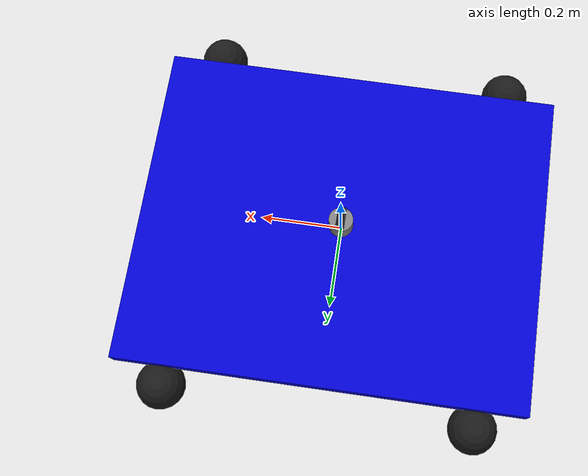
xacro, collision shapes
<?xml version="1.0"?>
<robot xmlns:xacro="http://www.ros.org/wiki/xacro" xmlns:gz="http://gazebosim.org/schema" name="omnibase">

  <!-- Materials -->
  <material name="darkgrey">
    <color rgba="0.1 0.1 0.1 1.0" />
  </material>
  <material name="grey">
    <color rgba="0.5 0.5 0.5 1.0" />
  </material>
  <material name="blue">
    <color rgba="0.0 0.0 0.8 1.0" />
  </material>
  <material name="black">
    <color rgba="0.1 0.1 0.1 1.0"/>
  </material>

  <!-- Constants from base_ws mecanumbot -->
  <xacro:property name="M_PI" value="3.1415926535897931" />
  <xacro:property name="M_PI_2" value="1.570796327" />

  <!-- Base dimensions - larger platform for drone landing -->
  <xacro:property name="base_size_x" value="1.0" />
  <xacro:property name="base_size_y" value="0.8" />
  <xacro:property name="base_size_z" value="0.05" />
  <xacro:property name="base_mass" value="10.0" />

  <!-- Wheel parameters - scaled from base_ws (0.03 -> 0.06 for larger base) -->
  <xacro:property name="wheel_radius" value="0.06" />
  <xacro:property name="wheel_width" value="0.05" />
  <xacro:property name="wheel_offset_x" value="0.38"/>
  <xacro:property name="wheel_offset_y" value="0.44"/>
  <xacro:property name="wheel_offset_z" value="-0.05"/>
  <xacro:property name="wheel_mass" value="0.500"/>
  <xacro:property name="mesh_scale" value="1.2"/>

  <!-- Inertia macros from base_ws -->
  <xacro:macro name="box_inertia" params="m x y z">
    <inertia ixx="${m*(y*y+z*z)/12}" ixy="0" ixz="0"
             iyy="${m*(x*x+z*z)/12}" iyz="0"
             izz="${m*(x*x+z*z)/12}"
    />
  </xacro:macro>
  <xacro:macro name="cylinder_inertia" params="m r w">
    <inertia ixx="${m*(3*r*r+w*w)/12}" ixy="0" ixz="0"
             iyy="${m*(3*r*r+w*w)/12}" iyz="0"
             izz="${m*r*r/2}"
    />
  </xacro:macro>

  <!-- Base Footprint -->
  <link name="base_footprint" />

  <joint name="base_joint" type="fixed">
    <parent link="base_footprint" />
    <child link="base_link" />
    <origin xyz="0 0 0" rpy="0 0 0" />
  </joint>

  <!-- Base Link -->
  <link name="base_link">
    <visual>
      <origin xyz="0 0 0" rpy="0 0 0" />
      <geometry>
        <box size="${base_size_x} ${base_size_y} ${base_size_z}" />
      </geometry>
      <material name="blue" />
    </visual>
    <collision>
      <origin xyz="0 0 0" rpy="0 0 0" />
      <geometry>
        <box size="${base_size_x} ${base_size_y} ${base_size_z}" />
      </geometry>
    </collision>
    <inertial>
      <origin xyz="0.0 0.0 0.0" rpy="0.0 0.0 0.0"/>
      <mass value="${base_mass}"/>
      <xacro:box_inertia m="${base_mass}" x="${base_size_x}" y="${base_size_y}" z="${base_size_z}"/>
    </inertial>
  </link>

  <!-- Front Left Wheel -->
  <joint name="fl_wheel_joint" type="continuous">
    <parent link="base_link"/>
    <child link="fl_wheel_link"/>
    <origin xyz="${-wheel_offset_x} ${-wheel_offset_y} ${wheel_offset_z}" rpy="0 0 ${-M_PI/2}" />
    <axis xyz="1 0 0" rpy="0 0 0"/>
  </joint>
  <link name="fl_wheel_link">
    <visual>
      <origin xyz="0 0 0" rpy="0 0 0" />
      <geometry>
        <mesh filename="package://omnibase_description/meshes/fl_wheel_link.STL" scale="${mesh_scale} ${mesh_scale} ${mesh_scale}" />
      </geometry>
      <material name="darkgrey" />
    </visual>
    <collision>
      <origin xyz="0 0 0" rpy="0 0 0" />
      <geometry>
        <sphere radius="${wheel_radius}" />
      </geometry>
    </collision>
    <inertial>
      <origin xyz="0 0 0" rpy="0 0 0" />
      <mass value="${wheel_mass}" />
      <xacro:cylinder_inertia m="${wheel_mass}" r="${wheel_radius}" w="${wheel_width}" />
    </inertial>
  </link>

  <!-- Front Right Wheel -->
  <joint name="fr_wheel_joint" type="continuous">
    <parent link="base_link"/>
    <child link="fr_wheel_link"/>
    <origin xyz="${-wheel_offset_x} ${wheel_offset_y} ${wheel_offset_z}" rpy="0 0 ${M_PI/2}" />
    <axis xyz="-1 0 0" rpy="0 0 0"/>
  </joint>
  <link name="fr_wheel_link">
    <visual>
      <origin xyz="0 0 0" rpy="0 0 0" />
      <geometry>
        <mesh filename="package://omnibase_description/meshes/fr_wheel_link.STL" scale="${mesh_scale} ${mesh_scale} ${mesh_scale}" />
      </geometry>
      <material name="darkgrey" />
    </visual>
    <collision>
      <origin xyz="0 0 0" rpy="0 0 0" />
      <geometry>
        <sphere radius="${wheel_radius}" />
      </geometry>
    </collision>
    <inertial>
      <origin xyz="0 0 0" rpy="0 0 0" />
      <mass value="${wheel_mass}" />
      <xacro:cylinder_inertia m="${wheel_mass}" r="${wheel_radius}" w="${wheel_width}" />
    </inertial>
  </link>

  <!-- Rear Left Wheel -->
  <joint name="rl_wheel_joint" type="continuous">
    <parent link="base_link"/>
    <child link="rl_wheel_link"/>
    <origin xyz="${wheel_offset_x} ${-wheel_offset_y} ${wheel_offset_z}" rpy="0 0 ${-M_PI/2}" />
    <axis xyz="1 0 0" rpy="0 0 0"/>
  </joint>
  <link name="rl_wheel_link">
    <visual>
      <origin xyz="0 0 0" rpy="0 0 0" />
      <geometry>
        <mesh filename="package://omnibase_description/meshes/rl_wheel_link.STL" scale="${mesh_scale} ${mesh_scale} ${mesh_scale}" />
      </geometry>
      <material name="darkgrey" />
    </visual>
    <collision>
      <origin xyz="0 0 0" rpy="0 0 0" />
      <geometry>
        <sphere radius="${wheel_radius}" />
      </geometry>
    </collision>
    <inertial>
      <origin xyz="0 0 0" rpy="0 0 0" />
      <mass value="${wheel_mass}" />
      <xacro:cylinder_inertia m="${wheel_mass}" r="${wheel_radius}" w="${wheel_width}" />
    </inertial>
  </link>

  <!-- Rear Right Wheel -->
  <joint name="rr_wheel_joint" type="continuous">
    <parent link="base_link"/>
    <child link="rr_wheel_link"/>
    <origin xyz="${wheel_offset_x} ${wheel_offset_y} ${wheel_offset_z}" rpy="0 0 ${M_PI/2}" />
    <axis xyz="-1 0 0" rpy="0 0 0"/>
  </joint>
  <link name="rr_wheel_link">
    <visual>
      <origin xyz="0 0 0" rpy="0 0 0" />
      <geometry>
        <mesh filename="package://omnibase_description/meshes/rr_wheel_link.STL" scale="${mesh_scale} ${mesh_scale} ${mesh_scale}" />
      </geometry>
      <material name="darkgrey" />
    </visual>
    <collision>
      <origin xyz="0 0 0" rpy="0 0 0" />
      <geometry>
        <sphere radius="${wheel_radius}" />
      </geometry>
    </collision>
    <inertial>
      <origin xyz="0 0 0" rpy="0 0 0" />
      <mass value="${wheel_mass}" />
      <xacro:cylinder_inertia m="${wheel_mass}" r="${wheel_radius}" w="${wheel_width}" />
    </inertial>
  </link>

  <!-- Camera Mount (retained from original omnibase) -->
  <link name="camera_mount">
    <visual>
      <geometry>
        <cylinder radius="0.03" length="0.05"/>
      </geometry>
      <material name="grey"/>
    </visual>
    <collision>
      <geometry>
        <cylinder radius="0.03" length="0.05"/>
      </geometry>
    </collision>
    <inertial>
      <mass value="0.1"/>
      <inertia ixx="0.0001" ixy="0.0" ixz="0.0"
               iyy="0.0001" iyz="0.0"
               izz="0.0001"/>
    </inertial>
  </link>

  <joint name="camera_mount_joint" type="fixed">
    <parent link="base_link"/>
    <child link="camera_mount"/>
    <origin xyz="0 0 ${base_size_z/2 + 0.025}" rpy="0 0 0"/>
  </joint>

  <!-- Camera Link -->
  <link name="camera_link">
    <visual>
      <geometry>
        <box size="0.02 0.05 0.02"/>
      </geometry>
      <material name="black"/>
    </visual>
    <collision>
      <geometry>
        <box size="0.02 0.05 0.02"/>
      </geometry>
    </collision>
    <inertial>
      <mass value="0.05"/>
      <inertia ixx="0.00001" ixy="0.0" ixz="0.0"
               iyy="0.00001" iyz="0.0"
               izz="0.00001"/>
    </inertial>
  </link>

  <joint name="camera_joint" type="fixed">
    <parent link="camera_mount"/>
    <child link="camera_link"/>
    <origin xyz="0 0 0.035" rpy="0 0 0"/>
  </joint>

  <!-- Camera Optical Frame (pointing up) -->
  <link name="camera_optical_link"/>

  <joint name="camera_optical_joint" type="fixed">
    <parent link="camera_link"/>
    <child link="camera_optical_link"/>
    <!-- Rotate to point upward: -90 deg around X, then -90 deg around Z -->
    <origin xyz="0 0 0" rpy="${-M_PI/2} 0 ${-M_PI/2}"/>
  </joint>

  <!-- Gazebo Harmonic Material Colors -->
  <gazebo reference="base_link">
    <visual>
      <material>
        <ambient>0.0 0.0 0.8 1</ambient>
        <diffuse>0.0 0.0 0.8 1</diffuse>
        <specular>0.1 0.1 0.1 1</specular>
      </material>
    </visual>
  </gazebo>
  <!-- FL wheel: rollers at +45 degrees, fdir1 oriented accordingly -->
  <gazebo reference="fl_wheel_link">
    <visual>
      <material>
        <ambient>0.1 0.1 0.1 1</ambient>
        <diffuse>0.1 0.1 0.1 1</diffuse>
        <specular>0.1 0.1 0.1 1</specular>
      </material>
    </visual>
    <collision>
      <surface>
        <friction>
          <ode>
            <mu>1.0</mu>
            <mu2>0.0</mu2>
            <fdir1 gz:expressed_in="base_link">0.707 0.707 0</fdir1>
            <slip1>0.0</slip1>
            <slip2>0.0</slip2>
          </ode>
        </friction>
        <contact>
          <ode>
            <kp>1000000.0</kp>
            <kd>100.0</kd>
            <min_depth>0.001</min_depth>
          </ode>
        </contact>
      </surface>
    </collision>
  </gazebo>
  <!-- FR wheel: rollers at -45 degrees -->
  <gazebo reference="fr_wheel_link">
    <visual>
      <material>
        <ambient>0.1 0.1 0.1 1</ambient>
        <diffuse>0.1 0.1 0.1 1</diffuse>
        <specular>0.1 0.1 0.1 1</specular>
      </material>
    </visual>
    <collision>
      <surface>
        <friction>
          <ode>
            <mu>1.0</mu>
            <mu2>0.0</mu2>
            <fdir1 gz:expressed_in="base_link">0.707 -0.707 0</fdir1>
            <slip1>0.0</slip1>
            <slip2>0.0</slip2>
          </ode>
        </friction>
        <contact>
          <ode>
            <kp>1000000.0</kp>
            <kd>100.0</kd>
            <min_depth>0.001</min_depth>
          </ode>
        </contact>
      </surface>
    </collision>
  </gazebo>
  <!-- RL wheel: rollers at -45 degrees -->
  <gazebo reference="rl_wheel_link">
    <visual>
      <material>
        <ambient>0.1 0.1 0.1 1</ambient>
        <diffuse>0.1 0.1 0.1 1</diffuse>
        <specular>0.1 0.1 0.1 1</specular>
      </material>
    </visual>
    <collision>
      <surface>
        <friction>
          <ode>
            <mu>1.0</mu>
            <mu2>0.0</mu2>
            <fdir1 gz:expressed_in="base_link">0.707 -0.707 0</fdir1>
            <slip1>0.0</slip1>
            <slip2>0.0</slip2>
          </ode>
        </friction>
        <contact>
          <ode>
            <kp>1000000.0</kp>
            <kd>100.0</kd>
            <min_depth>0.001</min_depth>
          </ode>
        </contact>
      </surface>
    </collision>
  </gazebo>
  <!-- RR wheel: rollers at +45 degrees -->
  <gazebo reference="rr_wheel_link">
    <visual>
      <material>
        <ambient>0.1 0.1 0.1 1</ambient>
        <diffuse>0.1 0.1 0.1 1</diffuse>
        <specular>0.1 0.1 0.1 1</specular>
      </material>
    </visual>
    <collision>
      <surface>
        <friction>
          <ode>
            <mu>1.0</mu>
            <mu2>0.0</mu2>
            <fdir1 gz:expressed_in="base_link">0.707 0.707 0</fdir1>
            <slip1>0.0</slip1>
            <slip2>0.0</slip2>
          </ode>
        </friction>
        <contact>
          <ode>
            <kp>1000000.0</kp>
            <kd>100.0</kd>
            <min_depth>0.001</min_depth>
          </ode>
        </contact>
      </surface>
    </collision>
  </gazebo>

  <!-- Upward Camera Sensor for Gazebo -->
  <gazebo reference="camera_link">
    <sensor name="upward_camera" type="camera">
      <!-- Rotate camera to point upward: pitch -90 degrees (around Y axis) -->
      <pose>0 0 0 0 -1.5708 0</pose>
      <update_rate>30.0</update_rate>
      <camera name="upward_camera">
        <horizontal_fov>1.3962634</horizontal_fov>
        <image>
          <width>640</width>
          <height>480</height>
          <format>R8G8B8</format>
        </image>
        <clip>
          <near>0.1</near>
          <far>100</far>
        </clip>
        <noise>
          <type>gaussian</type>
          <mean>0.0</mean>
          <stddev>0.007</stddev>
        </noise>
      </camera>
      <always_on>1</always_on>
      <visualize>true</visualize>
      <topic>camera</topic>
    </sensor>
  </gazebo>

  <!-- Odometry Publisher -->
  <gazebo>
    <plugin filename="gz-sim-odometry-publisher-system" name="gz::sim::systems::OdometryPublisher">
      <odom_frame>odom</odom_frame>
      <robot_base_frame>base_link</robot_base_frame>
      <odom_topic>/model/omnibase/odometry</odom_topic>
      <odom_publish_frequency>50</odom_publish_frequency>
    </plugin>
  </gazebo>

  <!-- Velocity Control - enables direct cmd_vel control of base -->
  <gazebo>
    <plugin filename="gz-sim-velocity-control-system" name="gz::sim::systems::VelocityControl">
      <topic>/model/omnibase/cmd_vel</topic>
      <initial_linear>0 0 0</initial_linear>
      <initial_angular>0 0 0</initial_angular>
    </plugin>
  </gazebo>

  <!-- ros2_control for Gazebo Harmonic simulation -->
  <ros2_control name="omnibase_sim" type="system">
    <hardware>
      <plugin>gz_ros2_control/GazeboSimSystem</plugin>
    </hardware>
    <joint name="fl_wheel_joint">
      <command_interface name="velocity" />
      <state_interface name="position" />
      <state_interface name="velocity" />
    </joint>
    <joint name="fr_wheel_joint">
      <command_interface name="velocity" />
      <state_interface name="position" />
      <state_interface name="velocity" />
    </joint>
    <joint name="rl_wheel_joint">
      <command_interface name="velocity" />
      <state_interface name="position" />
      <state_interface name="velocity" />
    </joint>
    <joint name="rr_wheel_joint">
      <command_interface name="velocity" />
      <state_interface name="position" />
      <state_interface name="velocity" />
    </joint>
  </ros2_control>

  <!-- Gazebo ros2_control plugin -->
  <gazebo>
    <plugin filename="gz_ros2_control-system" name="gz_ros2_control::GazeboSimROS2ControlPlugin">
      <parameters>$(find omnibase_control)/config/mecanum_controllers.yaml</parameters>
      <ros>
        <remapping>/controller_manager/robot_description:=/robot_description</remapping>
      </ros>
    </plugin>
  </gazebo>

</robot>
